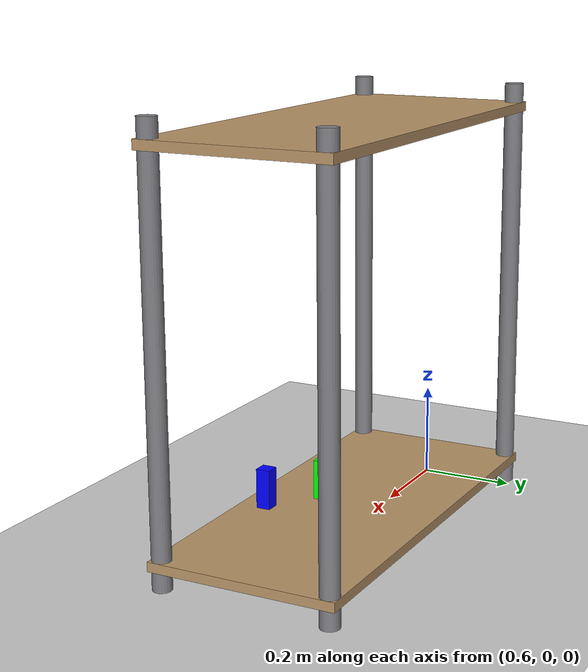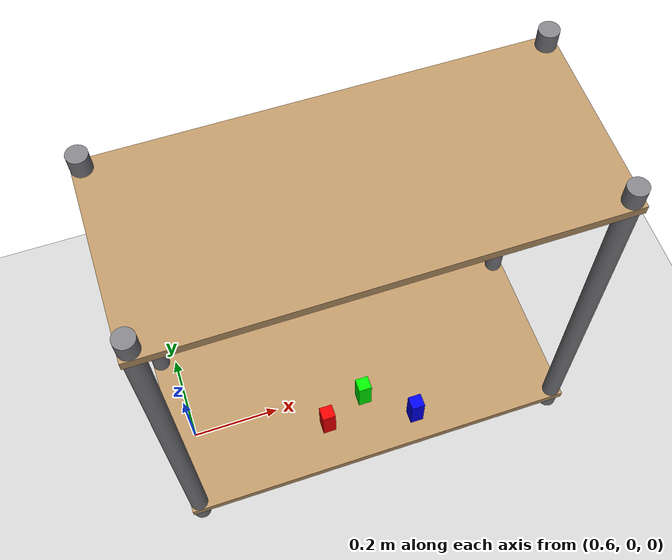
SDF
<sdf version='1.9'>
  <world name='empty_world'>
    <gravity>0 0 -9.8</gravity>
    <magnetic_field>6e-06 2.3e-05 -4.2e-05</magnetic_field>
    <atmosphere type='adiabatic'/>
    <physics type='ode'>
      <max_step_size>0.001</max_step_size>
      <real_time_factor>1</real_time_factor>
      <real_time_update_rate>1000</real_time_update_rate>
    </physics>
    <scene>
      <ambient>0.4 0.4 0.4 1</ambient>
      <background>0.7 0.7 0.7 1</background>
      <shadows>true</shadows>
    </scene>

    <model name='ground_plane'>
      <static>true</static>
      <link name='link'>
        <collision name='collision'>
          <geometry>
            <plane>
              <normal>0 0 1</normal>
              <size>1 1</size>
            </plane>
          </geometry>
          <surface>
            <friction>
              <ode/>
            </friction>
            <bounce/>
            <contact/>
          </surface>
        </collision>
        <visual name='visual'>
          <geometry>
            <plane>
              <normal>0 0 1</normal>
              <size>100 100</size>
            </plane>
          </geometry>
          <material>
            <ambient>0.8 0.8 0.8 1</ambient>
            <diffuse>0.8 0.8 0.8 1</diffuse>
            <specular>0.8 0.8 0.8 1</specular>
          </material>
        </visual>
        <pose>0 0 0 0 -0 0</pose>
        <inertial>
          <pose>0 0 0 0 -0 0</pose>
          <mass>1</mass>
          <inertia>
            <ixx>1</ixx>
            <ixy>0</ixy>
            <ixz>0</ixz>
            <iyy>1</iyy>
            <iyz>0</iyz>
            <izz>1</izz>
          </inertia>
        </inertial>
        <enable_wind>false</enable_wind>
      </link>
      <pose>0 0 0 0 -0 0</pose>
      <self_collide>false</self_collide>
    </model>

    <light name="sun" type="directional">
      <cast_shadows>true</cast_shadows>
      <!-- Position doesn't matter much for directional lights -->
      <pose>0 0 100 0 0 0</pose>
      <!-- Sunlight coming diagonally downward -->
      <direction>0 0 0</direction>
      <intensity>1.0</intensity>
      <diffuse>0.95 0.95 0.9 1</diffuse>
      <specular>0.2 0.2 0.2 1</specular>
    </light>

    <light name="shelf_spotlight" type="spot">
      <pose>1.0 0.0 0.84 0 0 0</pose>
      <cast_shadows>true</cast_shadows>
      <intensity>2</intensity>
      <direction>0 0 -1</direction>
      <diffuse>1.0 1.0 1.0 1</diffuse>
      <attenuation>
        <range>0.8</range>
        <constant>1.0</constant>
        <linear>0.3</linear>
        <quadratic>0.01</quadratic>
      </attenuation>
      <spot>
        <inner_angle>0.4</inner_angle>
        <outer_angle>0.8</outer_angle>
        <falloff>1.0</falloff>
      </spot>
    </light>

    <model name="storage_shelf_unit">
      <static>true</static>
      <pose>1.0 0.0 0.0 0 0 0</pose>

      <!-- 4 corner posts (cylindrical rods), full shelf height -->
      <link name="post_front_right">
        <pose>0.43 -0.18 0.45 0 0 0</pose>
        <collision name="post_front_right_collision">
          <geometry>
            <cylinder><radius>0.02</radius><length>0.9</length></cylinder>
          </geometry>
        </collision>
        <visual name="post_front_right_visual">
          <geometry>
            <cylinder><radius>0.02</radius><length>0.9</length></cylinder>
          </geometry>
          <material>
            <ambient>0.5 0.5 0.52 1</ambient>
            <diffuse>0.5 0.5 0.52 1</diffuse>
          </material>
        </visual>
      </link>

      <link name="post_front_left">
        <pose>0.43 0.18 0.45 0 0 0</pose>
        <collision name="post_front_left_collision">
          <geometry>
            <cylinder><radius>0.02</radius><length>0.9</length></cylinder>
          </geometry>
        </collision>
        <visual name="post_front_left_visual">
          <geometry>
            <cylinder><radius>0.02</radius><length>0.9</length></cylinder>
          </geometry>
          <material>
            <ambient>0.5 0.5 0.52 1</ambient>
            <diffuse>0.5 0.5 0.52 1</diffuse>
          </material>
        </visual>
      </link>

      <link name="post_back_right">
        <pose>-0.43 -0.18 0.45 0 0 0</pose>
        <collision name="post_back_right_collision">
          <geometry>
            <cylinder><radius>0.02</radius><length>0.9</length></cylinder>
          </geometry>
        </collision>
        <visual name="post_back_right_visual">
          <geometry>
            <cylinder><radius>0.02</radius><length>0.9</length></cylinder>
          </geometry>
          <material>
            <ambient>0.5 0.5 0.52 1</ambient>
            <diffuse>0.5 0.5 0.52 1</diffuse>
          </material>
        </visual>
      </link>

      <link name="post_back_left">
        <pose>-0.43 0.18 0.45 0 0 0</pose>
        <collision name="post_back_left_collision">
          <geometry>
            <cylinder><radius>0.02</radius><length>0.9</length></cylinder>
          </geometry>
        </collision>
        <visual name="post_back_left_visual">
          <geometry>
            <cylinder><radius>0.02</radius><length>0.9</length></cylinder>
          </geometry>
          <material>
            <ambient>0.5 0.5 0.52 1</ambient>
            <diffuse>0.5 0.5 0.52 1</diffuse>
          </material>
        </visual>
      </link>

      <!-- Row 1: bottom shelf slab (ground level) -->
      <link name="shelf_row_bottom">
        <pose>0 0 0.05 0 0 0</pose>
        <collision name="shelf_row_bottom_collision">
          <geometry>
            <box><size>0.9 0.4 0.02</size></box>
          </geometry>
        </collision>
        <visual name="shelf_row_bottom_visual">
          <geometry>
            <box><size>0.9 0.4 0.02</size></box>
          </geometry>
          <material>
            <ambient>0.72 0.58 0.40 1</ambient>
            <diffuse>0.72 0.58 0.40 1</diffuse>
          </material>
        </visual>
      </link>

      <!-- Row 2: top shelf slab (elevated / human operating height) -->
      <link name="shelf_row_top">
        <pose>0 0 0.85 0 0 0</pose>
        <collision name="shelf_row_top_collision">
          <geometry>
            <box><size>0.9 0.4 0.02</size></box>
          </geometry>
        </collision>
        <visual name="shelf_row_top_visual">
          <geometry>
            <box><size>0.9 0.4 0.02</size></box>
          </geometry>
          <material>
            <ambient>0.72 0.58 0.40 1</ambient>
            <diffuse>0.72 0.58 0.40 1</diffuse>
          </material>
        </visual>
      </link>

      <!-- Hollow crate (open-top, thin-walled box) sitting on the bottom row -->
    </model>

    <!-- 3 dynamic blocks resting inside the crate (only non-static parts) -->
    <model name="shelf_block_red">
      <static>false</static>
      <link name="shelf_block_red_link">
        <pose>0.9 -0.101 0.094 0 0 0</pose>
        <inertial>
          <mass>0.01</mass>
          <inertia>
            <ixx>2.08e-05</ixx><iyy>2.08e-05</iyy><izz>2.08e-05</izz>
            <ixy>0</ixy><ixz>0</ixz><iyz>0</iyz>
          </inertia>
        </inertial>
        <collision name="shelf_block_red_collision">
          <geometry>
            <box><size>0.03 0.03 0.1</size></box>
          </geometry>
        </collision>
        <visual name="shelf_block_red_visual">
          <geometry>
            <box><size>0.03 0.03 0.1</size></box>
          </geometry>
          <material>
            <ambient>1 0 0 1</ambient>
            <diffuse>1 0 0 1</diffuse>
          </material>
        </visual>
      </link>
    </model>

    <model name="shelf_block_green">
      <static>false</static>
      <link name="shelf_block_green_link">
        <pose>1.0 -0.061 0.094 0 0 0</pose>
        <inertial>
          <mass>0.01</mass>
          <inertia>
            <ixx>2.08e-05</ixx><iyy>2.08e-05</iyy><izz>2.08e-05</izz>
            <ixy>0</ixy><ixz>0</ixz><iyz>0</iyz>
          </inertia>
        </inertial>
        <collision name="shelf_block_green_collision">
          <geometry>
            <box><size>0.03 0.03 0.1</size></box>
          </geometry>
        </collision>
        <visual name="shelf_block_green_visual">
          <geometry>
            <box><size>0.03 0.03 0.1</size></box>
          </geometry>
          <material>
            <ambient>0 1 0 1</ambient>
            <diffuse>0 1 0 1</diffuse>
          </material>
        </visual>
      </link>
    </model>

    <model name="shelf_block_blue">
      <static>false</static>
      <link name="shelf_block_blue_link">
        <pose>1.1 -0.141 0.094 0 0 0</pose>
        <inertial>
          <mass>0.01</mass>
          <inertia>
            <ixx>2.08e-05</ixx><iyy>2.08e-05</iyy><izz>2.08e-05</izz>
            <ixy>0</ixy><ixz>0</ixz><iyz>0</iyz>
          </inertia>
        </inertial>
        <collision name="shelf_block_blue_collision">
          <geometry>
            <box><size>0.03 0.03 0.1</size></box>
          </geometry>
        </collision>
        <visual name="shelf_block_blue_visual">
          <geometry>
            <box><size>0.03 0.03 0.1</size></box>
          </geometry>
          <material>
            <ambient>0 0 1 1</ambient>
            <diffuse>0 0 1 1</diffuse>
          </material>
        </visual>
      </link>
    </model>

  </world>
</sdf>
